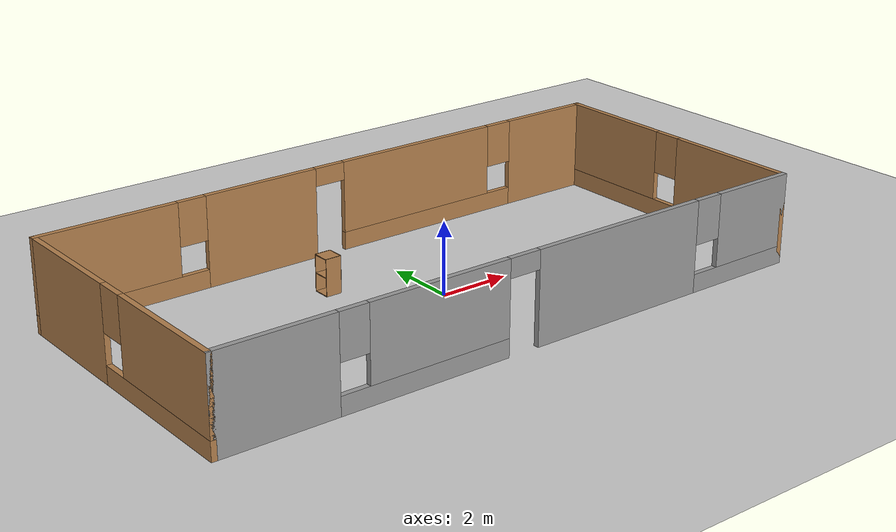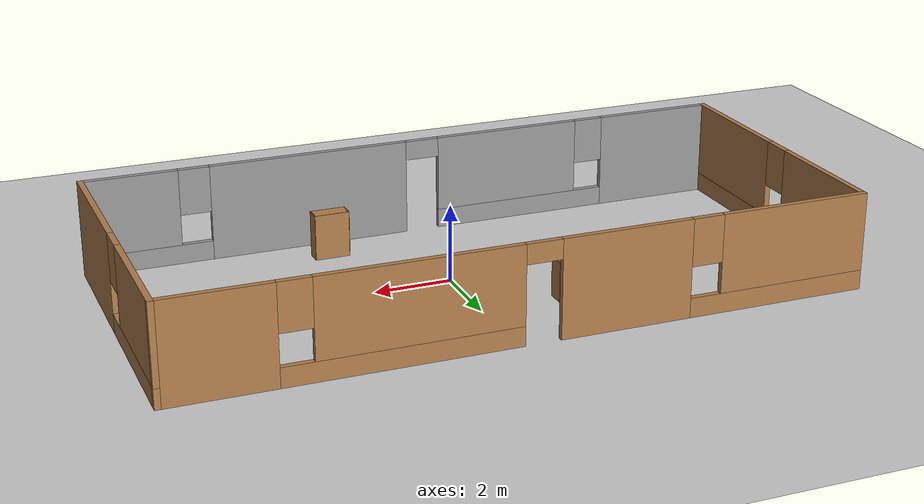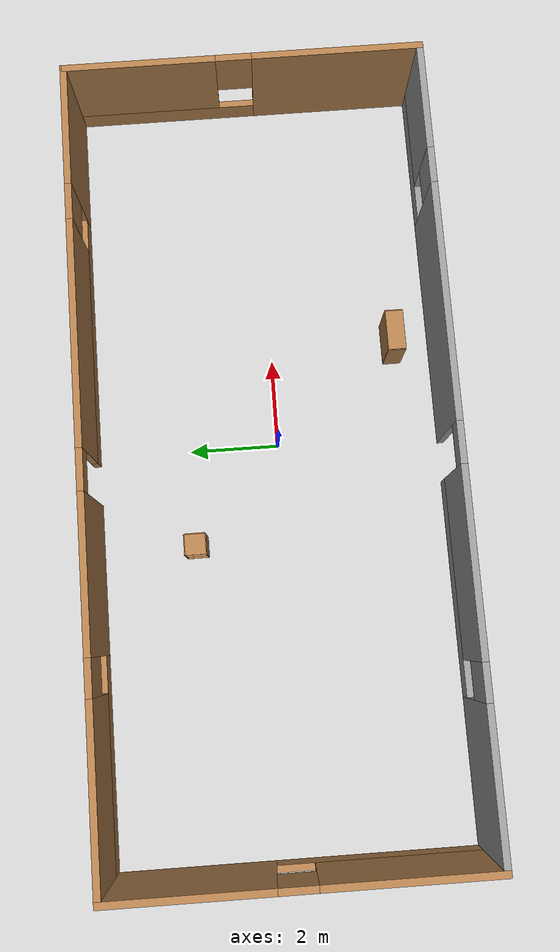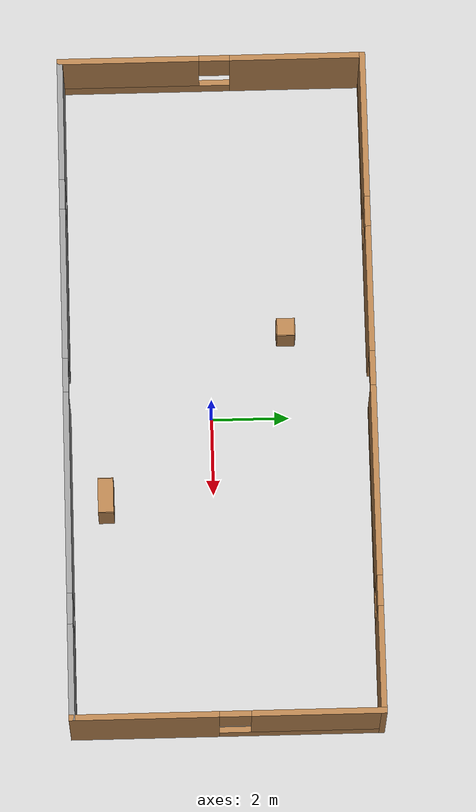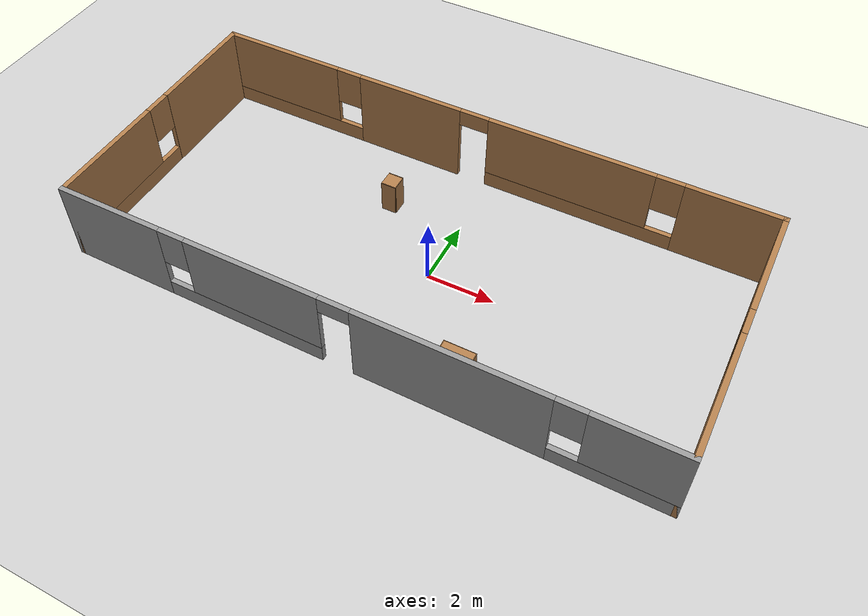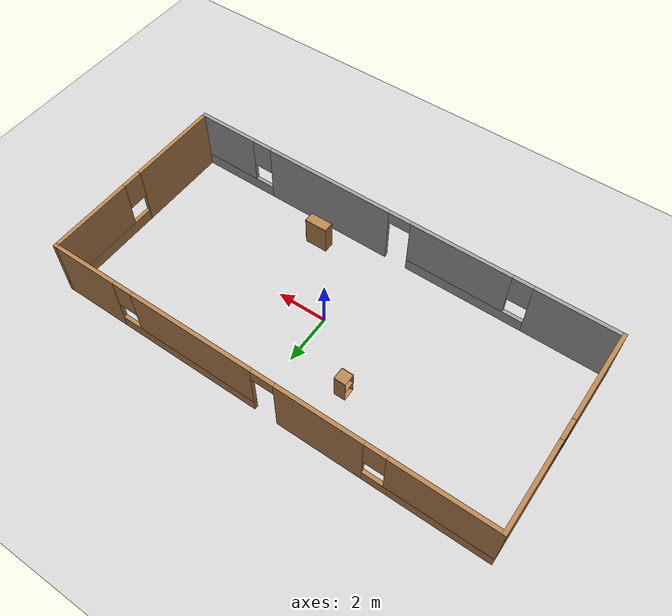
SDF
<sdf version="1.7">
 <world name="default">
  <light name="sun" type="directional">
   <pose>0 0 10 0 -0 0</pose>
   <diffuse>0.8 0.8 0.8 1</diffuse>
   <specular>0.2 0.2 0.2 1</specular>
   <attenuation>
    <range>1000</range>
    <constant>0.9</constant>
    <linear>0.01</linear>
    <quadratic>0.001</quadratic>
   </attenuation>
   <direction>-0.5 0.1 -0.9</direction>
   <spot><inner_angle>0</inner_angle><outer_angle>0</outer_angle><falloff>0</falloff></spot>
  </light>
  <model name="ground_plane">
   <static>1</static>
   <link name="link">
    <collision name="collision">
     <geometry><plane><normal>0 0 1</normal><size>100 100</size></plane></geometry>
     <surface>
      <contact><collide_bitmask>65535</collide_bitmask></contact>
      <friction><ode><mu>100</mu><mu2>50</mu2></ode></friction>
     </surface>
    </collision>
    <visual name="visual">
     <cast_shadows>0</cast_shadows>
     <geometry><plane><normal>0 0 1</normal><size>100 100</size></plane></geometry>
     <material>
      <script><uri>file://media/materials/scripts/gazebo.material</uri><name>Gazebo/Grey</name></script>
     </material>
    </visual>
   </link>
  </model>
  <gravity>0 0 -9.8</gravity>
  <magnetic_field>6e-06 2.3e-05 -4.2e-05</magnetic_field>
  <atmosphere type="adiabatic"/>
  <physics type="ode">
   <max_step_size>0.001</max_step_size>
   <real_time_factor>1</real_time_factor>
   <real_time_update_rate>1000</real_time_update_rate>
  </physics>
  <scene><ambient>0.4 0.4 0.4 1</ambient><background>0.7 0.7 0.7 1</background><shadows>1</shadows></scene>
  <audio><device>default</device></audio>
  <spherical_coordinates>
   <surface_model>EARTH_WGS84</surface_model>
   <latitude_deg>0</latitude_deg>
   <longitude_deg>0</longitude_deg>
   <elevation>0</elevation>
   <heading_deg>0</heading_deg>
  </spherical_coordinates>
  <model name="test_0">
   <pose>-0.38415 0.20926 0 0 -0 0</pose>
   <link name="Wall_0">
    <pose>-8.675 0 0 0 -0 -1.5708</pose>
    <visual name="Wall_0_Visual_0">
     <pose>-2.2421 0 1.25 0 -0 0</pose>
     <geometry><box><size>3.5158 0.15 2.5</size></box></geometry>
     <material>
      <script><uri>file://media/materials/scripts/gazebo.material</uri><name>Gazebo/Wood</name></script>
      <ambient>1 1 1 1</ambient>
     </material>
     <meta><layer>0</layer></meta>
    </visual>
    <collision name="Wall_0_Collision_0">
     <geometry><box><size>3.5158 0.15 2.5</size></box></geometry>
     <pose>-2.2421 0 1.25 0 -0 0</pose>
    </collision>
    <visual name="Wall_0_Visual_1">
     <pose>1.7579 0 0.25 0 -0 0</pose>
     <geometry><box><size>4.4842 0.15 0.5</size></box></geometry>
     <material>
      <script><uri>file://media/materials/scripts/gazebo.material</uri><name>Gazebo/Wood</name></script>
      <ambient>1 1 1 1</ambient>
     </material>
     <meta><layer>0</layer></meta>
    </visual>
    <collision name="Wall_0_Collision_1">
     <geometry><box><size>4.4842 0.15 0.5</size></box></geometry>
     <pose>1.7579 0 0.25 0 -0 0</pose>
    </collision>
    <visual name="Wall_0_Visual_2">
     <pose>2.1579 0 1.5 0 -0 0</pose>
     <geometry><box><size>3.6842 0.15 2</size></box></geometry>
     <material>
      <script><uri>file://media/materials/scripts/gazebo.material</uri><name>Gazebo/Wood</name></script>
      <ambient>1 1 1 1</ambient>
     </material>
     <meta><layer>0</layer></meta>
    </visual>
    <collision name="Wall_0_Collision_2">
     <geometry><box><size>3.6842 0.15 2</size></box></geometry>
     <pose>2.1579 0 1.5 0 -0 0</pose>
    </collision>
    <visual name="Wall_0_Visual_3">
     <pose>-0.084204 0 1.9 0 -0 0</pose>
     <geometry><box><size>0.8 0.15 1.2</size></box></geometry>
     <material>
      <script><uri>file://media/materials/scripts/gazebo.material</uri><name>Gazebo/Wood</name></script>
      <ambient>1 1 1 1</ambient>
     </material>
     <meta><layer>0</layer></meta>
    </visual>
    <collision name="Wall_0_Collision_3">
     <geometry><box><size>0.8 0.15 1.2</size></box></geometry>
     <pose>-0.084204 0 1.9 0 -0 0</pose>
    </collision>
   </link>
   <link name="Wall_1">
    <pose>-0 -3.925 0 0 -0 0</pose>
    <visual name="Wall_1_Visual_0">
     <pose>-7.11658 0 1.25 0 -0 0</pose>
     <geometry><box><size>3.26684 0.15 2.5</size></box></geometry>
     <material>
      <script><uri>file://media/materials/scripts/gazebo.material</uri><name>Gazebo/Grey</name></script>
      <ambient>1 1 1 1</ambient>
     </material>
     <meta><layer>0</layer></meta>
    </visual>
    <collision name="Wall_1_Collision_0">
     <geometry><box><size>3.26684 0.15 2.5</size></box></geometry>
     <pose>-7.11658 0 1.25 0 -0 0</pose>
    </collision>
    <visual name="Wall_1_Visual_1">
     <pose>2.83204 0 1.25 0 -0 0</pose>
     <geometry><box><size>5.25633 0.15 2.5</size></box></geometry>
     <material>
      <script><uri>file://media/materials/scripts/gazebo.material</uri><name>Gazebo/Grey</name></script>
      <ambient>1 1 1 1</ambient>
     </material>
     <meta><layer>0</layer></meta>
    </visual>
    <collision name="Wall_1_Collision_1">
     <geometry><box><size>5.25633 0.15 2.5</size></box></geometry>
     <pose>2.83204 0 1.25 0 -0 0</pose>
    </collision>
    <visual name="Wall_1_Visual_2">
     <pose>-3.08964 0 0.25 0 -0 0</pose>
     <geometry><box><size>4.78703 0.15 0.5</size></box></geometry>
     <material>
      <script><uri>file://media/materials/scripts/gazebo.material</uri><name>Gazebo/Grey</name></script>
      <ambient>1 1 1 1</ambient>
     </material>
     <meta><layer>0</layer></meta>
    </visual>
    <collision name="Wall_1_Collision_2">
     <geometry><box><size>4.78703 0.15 0.5</size></box></geometry>
     <pose>-3.08964 0 0.25 0 -0 0</pose>
    </collision>
    <visual name="Wall_1_Visual_3">
     <pose>7.1051 0 0.25 0 -0 0</pose>
     <geometry><box><size>3.2898 0.15 0.5</size></box></geometry>
     <material>
      <script><uri>file://media/materials/scripts/gazebo.material</uri><name>Gazebo/Grey</name></script>
      <ambient>1 1 1 1</ambient>
     </material>
     <meta><layer>0</layer></meta>
    </visual>
    <collision name="Wall_1_Collision_3">
     <geometry><box><size>3.2898 0.15 0.5</size></box></geometry>
     <pose>7.1051 0 0.25 0 -0 0</pose>
    </collision>
    <visual name="Wall_1_Visual_4">
     <pose>-2.68964 0 1.5 0 -0 0</pose>
     <geometry><box><size>3.98703 0.15 2</size></box></geometry>
     <material>
      <script><uri>file://media/materials/scripts/gazebo.material</uri><name>Gazebo/Grey</name></script>
      <ambient>1 1 1 1</ambient>
     </material>
     <meta><layer>0</layer></meta>
    </visual>
    <collision name="Wall_1_Collision_4">
     <geometry><box><size>3.98703 0.15 2</size></box></geometry>
     <pose>-2.68964 0 1.5 0 -0 0</pose>
    </collision>
    <visual name="Wall_1_Visual_5">
     <pose>-2.68964 0 1.5 0 -0 0</pose>
     <geometry><box><size>3.98703 0.15 2</size></box></geometry>
     <material>
      <script><uri>file://media/materials/scripts/gazebo.material</uri><name>Gazebo/Grey</name></script>
      <ambient>1 1 1 1</ambient>
     </material>
     <meta><layer>0</layer></meta>
    </visual>
    <collision name="Wall_1_Collision_5">
     <geometry><box><size>3.98703 0.15 2</size></box></geometry>
     <pose>-2.68964 0 1.5 0 -0 0</pose>
    </collision>
    <visual name="Wall_1_Visual_6">
     <pose>7.5051 0 1.5 0 -0 0</pose>
     <geometry><box><size>2.4898 0.15 2</size></box></geometry>
     <material>
      <script><uri>file://media/materials/scripts/gazebo.material</uri><name>Gazebo/Grey</name></script>
      <ambient>1 1 1 1</ambient>
     </material>
     <meta><layer>0</layer></meta>
    </visual>
    <collision name="Wall_1_Collision_6">
     <geometry><box><size>2.4898 0.15 2</size></box></geometry>
     <pose>7.5051 0 1.5 0 -0 0</pose>
    </collision>
    <visual name="Wall_1_Visual_7">
     <pose>-5.08316 0 1.9 0 -0 0</pose>
     <geometry><box><size>0.8 0.15 1.2</size></box></geometry>
     <material>
      <script><uri>file://media/materials/scripts/gazebo.material</uri><name>Gazebo/Grey</name></script>
      <ambient>1 1 1 1</ambient>
     </material>
     <meta><layer>0</layer></meta>
    </visual>
    <collision name="Wall_1_Collision_7">
     <geometry><box><size>0.8 0.15 1.2</size></box></geometry>
     <pose>-5.08316 0 1.9 0 -0 0</pose>
    </collision>
    <visual name="Wall_1_Visual_8">
     <pose>5.8602 0 1.9 0 -0 0</pose>
     <geometry><box><size>0.8 0.15 1.2</size></box></geometry>
     <material>
      <script><uri>file://media/materials/scripts/gazebo.material</uri><name>Gazebo/Grey</name></script>
      <ambient>1 1 1 1</ambient>
     </material>
     <meta><layer>0</layer></meta>
    </visual>
    <collision name="Wall_1_Collision_8">
     <geometry><box><size>0.8 0.15 1.2</size></box></geometry>
     <pose>5.8602 0 1.9 0 -0 0</pose>
    </collision>
    <visual name="Wall_1_Visual_9">
     <pose>-0.246125 0 2.25 0 -0 0</pose>
     <geometry><box><size>0.9 0.15 0.5</size></box></geometry>
     <material>
      <script><uri>file://media/materials/scripts/gazebo.material</uri><name>Gazebo/Grey</name></script>
      <ambient>1 1 1 1</ambient>
     </material>
     <meta><layer>0</layer></meta>
    </visual>
    <collision name="Wall_1_Collision_9">
     <geometry><box><size>0.9 0.15 0.5</size></box></geometry>
     <pose>-0.246125 0 2.25 0 -0 0</pose>
    </collision>
    <visual name="Wall_1_Visual_10">
     <pose>-0.246125 0 2.25 0 -0 0</pose>
     <geometry><box><size>0.9 0.15 0.5</size></box></geometry>
     <material>
      <script><uri>file://media/materials/scripts/gazebo.material</uri><name>Gazebo/Grey</name></script>
      <ambient>1 1 1 1</ambient>
     </material>
     <meta><layer>0</layer></meta>
    </visual>
    <collision name="Wall_1_Collision_10">
     <geometry><box><size>0.9 0.15 0.5</size></box></geometry>
     <pose>-0.246125 0 2.25 0 -0 0</pose>
    </collision>
   </link>
   <link name="Wall_2">
    <pose>8.675 0 0 0 -0 1.5708</pose>
    <visual name="Wall_2_Visual_0">
     <pose>-2.10644 0 1.25 0 -0 0</pose>
     <geometry><box><size>3.78712 0.15 2.5</size></box></geometry>
     <material>
      <script><uri>file://media/materials/scripts/gazebo.material</uri><name>Gazebo/Wood</name></script>
      <ambient>1 1 1 1</ambient>
     </material>
     <meta><layer>0</layer></meta>
    </visual>
    <collision name="Wall_2_Collision_0">
     <geometry><box><size>3.78712 0.15 2.5</size></box></geometry>
     <pose>-2.10644 0 1.25 0 -0 0</pose>
    </collision>
    <visual name="Wall_2_Visual_1">
     <pose>1.89356 0 0.25 0 -0 0</pose>
     <geometry><box><size>4.21288 0.15 0.5</size></box></geometry>
     <material>
      <script><uri>file://media/materials/scripts/gazebo.material</uri><name>Gazebo/Wood</name></script>
      <ambient>1 1 1 1</ambient>
     </material>
     <meta><layer>0</layer></meta>
    </visual>
    <collision name="Wall_2_Collision_1">
     <geometry><box><size>4.21288 0.15 0.5</size></box></geometry>
     <pose>1.89356 0 0.25 0 -0 0</pose>
    </collision>
    <visual name="Wall_2_Visual_2">
     <pose>2.29356 0 1.5 0 -0 0</pose>
     <geometry><box><size>3.41288 0.15 2</size></box></geometry>
     <material>
      <script><uri>file://media/materials/scripts/gazebo.material</uri><name>Gazebo/Wood</name></script>
      <ambient>1 1 1 1</ambient>
     </material>
     <meta><layer>0</layer></meta>
    </visual>
    <collision name="Wall_2_Collision_2">
     <geometry><box><size>3.41288 0.15 2</size></box></geometry>
     <pose>2.29356 0 1.5 0 -0 0</pose>
    </collision>
    <visual name="Wall_2_Visual_3">
     <pose>0.18712 0 1.9 0 -0 0</pose>
     <geometry><box><size>0.8 0.15 1.2</size></box></geometry>
     <material>
      <script><uri>file://media/materials/scripts/gazebo.material</uri><name>Gazebo/Wood</name></script>
      <ambient>1 1 1 1</ambient>
     </material>
     <meta><layer>0</layer></meta>
    </visual>
    <collision name="Wall_2_Collision_3">
     <geometry><box><size>0.8 0.15 1.2</size></box></geometry>
     <pose>0.18712 0 1.9 0 -0 0</pose>
    </collision>
   </link>
   <link name="Wall_3">
    <pose>-0 3.925 0 0 -0 3.14159</pose>
    <visual name="Wall_3_Visual_0">
     <pose>-7.36788 0 1.25 0 -0 0</pose>
     <geometry><box><size>2.76424 0.15 2.5</size></box></geometry>
     <material>
      <script><uri>file://media/materials/scripts/gazebo.material</uri><name>Gazebo/Wood</name></script>
      <ambient>1 1 1 1</ambient>
     </material>
     <meta><layer>0</layer></meta>
    </visual>
    <collision name="Wall_3_Collision_0">
     <geometry><box><size>2.76424 0.15 2.5</size></box></geometry>
     <pose>-7.36788 0 1.25 0 -0 0</pose>
    </collision>
    <visual name="Wall_3_Visual_1">
     <pose>2.36374 0 1.25 0 -0 0</pose>
     <geometry><box><size>3.33523 0.15 2.5</size></box></geometry>
     <material>
      <script><uri>file://media/materials/scripts/gazebo.material</uri><name>Gazebo/Wood</name></script>
      <ambient>1 1 1 1</ambient>
     </material>
     <meta><layer>0</layer></meta>
    </visual>
    <collision name="Wall_3_Collision_1">
     <geometry><box><size>3.33523 0.15 2.5</size></box></geometry>
     <pose>2.36374 0 1.25 0 -0 0</pose>
    </collision>
    <visual name="Wall_3_Visual_2">
     <pose>-3.09482 0 0.25 0 -0 0</pose>
     <geometry><box><size>5.78188 0.15 0.5</size></box></geometry>
     <material>
      <script><uri>file://media/materials/scripts/gazebo.material</uri><name>Gazebo/Wood</name></script>
      <ambient>1 1 1 1</ambient>
     </material>
     <meta><layer>0</layer></meta>
    </visual>
    <collision name="Wall_3_Collision_2">
     <geometry><box><size>5.78188 0.15 0.5</size></box></geometry>
     <pose>-3.09482 0 0.25 0 -0 0</pose>
    </collision>
    <visual name="Wall_3_Visual_3">
     <pose>6.39068 0 0.25 0 -0 0</pose>
     <geometry><box><size>4.71864 0.15 0.5</size></box></geometry>
     <material>
      <script><uri>file://media/materials/scripts/gazebo.material</uri><name>Gazebo/Wood</name></script>
      <ambient>1 1 1 1</ambient>
     </material>
     <meta><layer>0</layer></meta>
    </visual>
    <collision name="Wall_3_Collision_3">
     <geometry><box><size>4.71864 0.15 0.5</size></box></geometry>
     <pose>6.39068 0 0.25 0 -0 0</pose>
    </collision>
    <visual name="Wall_3_Visual_4">
     <pose>-2.69482 0 1.5 0 -0 0</pose>
     <geometry><box><size>4.98188 0.15 2</size></box></geometry>
     <material>
      <script><uri>file://media/materials/scripts/gazebo.material</uri><name>Gazebo/Wood</name></script>
      <ambient>1 1 1 1</ambient>
     </material>
     <meta><layer>0</layer></meta>
    </visual>
    <collision name="Wall_3_Collision_4">
     <geometry><box><size>4.98188 0.15 2</size></box></geometry>
     <pose>-2.69482 0 1.5 0 -0 0</pose>
    </collision>
    <visual name="Wall_3_Visual_5">
     <pose>-2.69482 0 1.5 0 -0 0</pose>
     <geometry><box><size>4.98188 0.15 2</size></box></geometry>
     <material>
      <script><uri>file://media/materials/scripts/gazebo.material</uri><name>Gazebo/Wood</name></script>
      <ambient>1 1 1 1</ambient>
     </material>
     <meta><layer>0</layer></meta>
    </visual>
    <collision name="Wall_3_Collision_5">
     <geometry><box><size>4.98188 0.15 2</size></box></geometry>
     <pose>-2.69482 0 1.5 0 -0 0</pose>
    </collision>
    <visual name="Wall_3_Visual_6">
     <pose>6.79068 0 1.5 0 -0 0</pose>
     <geometry><box><size>3.91864 0.15 2</size></box></geometry>
     <material>
      <script><uri>file://media/materials/scripts/gazebo.material</uri><name>Gazebo/Wood</name></script>
      <ambient>1 1 1 1</ambient>
     </material>
     <meta><layer>0</layer></meta>
    </visual>
    <collision name="Wall_3_Collision_6">
     <geometry><box><size>3.91864 0.15 2</size></box></geometry>
     <pose>6.79068 0 1.5 0 -0 0</pose>
    </collision>
    <visual name="Wall_3_Visual_7">
     <pose>-5.58576 0 1.9 0 -0 0</pose>
     <geometry><box><size>0.8 0.15 1.2</size></box></geometry>
     <material>
      <script><uri>file://media/materials/scripts/gazebo.material</uri><name>Gazebo/Wood</name></script>
      <ambient>1 1 1 1</ambient>
     </material>
     <meta><layer>0</layer></meta>
    </visual>
    <collision name="Wall_3_Collision_7">
     <geometry><box><size>0.8 0.15 1.2</size></box></geometry>
     <pose>-5.58576 0 1.9 0 -0 0</pose>
    </collision>
    <visual name="Wall_3_Visual_8">
     <pose>4.43136 0 1.9 0 -0 0</pose>
     <geometry><box><size>0.8 0.15 1.2</size></box></geometry>
     <material>
      <script><uri>file://media/materials/scripts/gazebo.material</uri><name>Gazebo/Wood</name></script>
      <ambient>1 1 1 1</ambient>
     </material>
     <meta><layer>0</layer></meta>
    </visual>
    <collision name="Wall_3_Collision_8">
     <geometry><box><size>0.8 0.15 1.2</size></box></geometry>
     <pose>4.43136 0 1.9 0 -0 0</pose>
    </collision>
    <visual name="Wall_3_Visual_9">
     <pose>0.246125 0 2.25 0 -0 0</pose>
     <geometry><box><size>0.9 0.15 0.5</size></box></geometry>
     <material>
      <script><uri>file://media/materials/scripts/gazebo.material</uri><name>Gazebo/Wood</name></script>
      <ambient>1 1 1 1</ambient>
     </material>
     <meta><layer>0</layer></meta>
    </visual>
    <collision name="Wall_3_Collision_9">
     <geometry><box><size>0.9 0.15 0.5</size></box></geometry>
     <pose>0.246125 0 2.25 0 -0 0</pose>
    </collision>
    <visual name="Wall_3_Visual_10">
     <pose>0.246125 0 2.25 0 -0 0</pose>
     <geometry><box><size>0.9 0.15 0.5</size></box></geometry>
     <material>
      <script><uri>file://media/materials/scripts/gazebo.material</uri><name>Gazebo/Wood</name></script>
      <ambient>1 1 1 1</ambient>
     </material>
     <meta><layer>0</layer></meta>
    </visual>
    <collision name="Wall_3_Collision_10">
     <geometry><box><size>0.9 0.15 0.5</size></box></geometry>
     <pose>0.246125 0 2.25 0 -0 0</pose>
    </collision>
   </link>
   <static>1</static>
  </model>
  <model name="bookshelf">
   <static>1</static>
   <link name="link">
    <inertial><mass>1</mass></inertial>
    <collision name="back">
     <pose>0 0.005 0.6 0 -0 0</pose>
     <geometry><box><size>0.9 0.01 1.2</size></box></geometry>
    </collision>
    <visual name="visual1">
     <pose>0 0.005 0.6 0 -0 0</pose>
     <geometry><box><size>0.9 0.01 1.2</size></box></geometry>
     <material>
      <script><uri>file://media/materials/scripts/gazebo.material</uri><name>Gazebo/Wood</name></script>
     </material>
    </visual>
    <collision name="left_side">
     <pose>0.45 -0.195 0.6 0 -0 0</pose>
     <geometry><box><size>0.02 0.4 1.2</size></box></geometry>
    </collision>
    <visual name="visual2">
     <pose>0.45 -0.195 0.6 0 -0 0</pose>
     <geometry><box><size>0.02 0.4 1.2</size></box></geometry>
     <material>
      <script><uri>file://media/materials/scripts/gazebo.material</uri><name>Gazebo/Wood</name></script>
     </material>
    </visual>
    <collision name="right_side">
     <pose>-0.45 -0.195 0.6 0 -0 0</pose>
     <geometry><box><size>0.02 0.4 1.2</size></box></geometry>
    </collision>
    <visual name="visual3">
     <pose>-0.45 -0.195 0.6 0 -0 0</pose>
     <geometry><box><size>0.02 0.4 1.2</size></box></geometry>
     <material>
      <script><uri>file://media/materials/scripts/gazebo.material</uri><name>Gazebo/Wood</name></script>
     </material>
    </visual>
    <collision name="bottom">
     <pose>0 -0.195 0.03 0 -0 0</pose>
     <geometry><box><size>0.88 0.4 0.06</size></box></geometry>
    </collision>
    <visual name="visual4">
     <pose>0 -0.195 0.03 0 -0 0</pose>
     <geometry><box><size>0.88 0.4 0.06</size></box></geometry>
     <material>
      <script><uri>file://media/materials/scripts/gazebo.material</uri><name>Gazebo/Wood</name></script>
     </material>
    </visual>
    <collision name="top">
     <pose>0 -0.195 1.19 0 -0 0</pose>
     <geometry><box><size>0.88 0.4 0.02</size></box></geometry>
    </collision>
    <visual name="visual5">
     <pose>0 -0.195 1.19 0 -0 0</pose>
     <geometry><box><size>0.88 0.4 0.02</size></box></geometry>
     <material>
      <script><uri>file://media/materials/scripts/gazebo.material</uri><name>Gazebo/Wood</name></script>
     </material>
    </visual>
    <collision name="low_shelf">
     <pose>0 -0.195 0.43 0 -0 0</pose>
     <geometry><box><size>0.88 0.4 0.02</size></box></geometry>
    </collision>
    <visual name="visual6">
     <pose>0 -0.195 0.43 0 -0 0</pose>
     <geometry><box><size>0.88 0.4 0.02</size></box></geometry>
     <material>
      <script><uri>file://media/materials/scripts/gazebo.material</uri><name>Gazebo/Wood</name></script>
     </material>
    </visual>
    <collision name="high_shelf">
     <pose>0 -0.195 0.8 0 -0 0</pose>
     <geometry><box><size>0.88 0.4 0.02</size></box></geometry>
    </collision>
    <visual name="visual7">
     <pose>0 -0.195 0.8 0 -0 0</pose>
     <geometry><box><size>0.88 0.4 0.02</size></box></geometry>
     <material>
      <script><uri>file://media/materials/scripts/gazebo.material</uri><name>Gazebo/Wood</name></script>
     </material>
    </visual>
   </link>
   <pose>2.23185 -2.57703 0 0 -0 0</pose>
  </model>
  <model name="cabinet">
   <static>1</static>
   <link name="cabinet_bottom_plate">
    <inertial>
     <pose>0 0 -1 0 -0 0</pose>
     <inertia><ixx>2.05</ixx><ixy>0</ixy><ixz>0</ixz><iyy>2.05</iyy><iyz>0</iyz><izz>2.05</izz></inertia>
     <mass>25</mass>
    </inertial>
    <collision name="cabinet_bottom_plate_geom">
     <pose>0 0 0.01 0 -0 0</pose>
     <geometry><box><size>0.45 0.45 0.02</size></box></geometry>
    </collision>
    <visual name="cabinet_bottom_plate_geom_visual">
     <pose>0 0 0.01 0 -0 0</pose>
     <geometry><box><size>0.45 0.45 0.02</size></box></geometry>
     <material>
      <script><uri>file://media/materials/scripts/gazebo.material</uri><name>Gazebo/Wood</name></script>
     </material>
    </visual>
    <collision name="cabinet_bottom_plate_geom_cabinet_back_plate">
     <pose>0.235 0 0.51 0 -0 0</pose>
     <geometry><box><size>0.02 0.45 1.02</size></box></geometry>
    </collision>
    <visual name="cabinet_bottom_plate_geom_cabinet_back_plate_visual">
     <pose>0.235 0 0.51 0 -0 0</pose>
     <geometry><box><size>0.02 0.45 1.02</size></box></geometry>
     <material>
      <script><uri>file://media/materials/scripts/gazebo.material</uri><name>Gazebo/Wood</name></script>
     </material>
    </visual>
    <collision name="cabinet_bottom_plate_geom_cabinet_left_plate">
     <pose>0 0.235 0.51 0 -0 0</pose>
     <geometry><box><size>0.45 0.02 1.02</size></box></geometry>
    </collision>
    <visual name="cabinet_bottom_plate_geom_cabinet_left_plate_visual">
     <pose>0 0.235 0.51 0 -0 0</pose>
     <geometry><box><size>0.45 0.02 1.02</size></box></geometry>
     <material>
      <script><uri>file://media/materials/scripts/gazebo.material</uri><name>Gazebo/Wood</name></script>
     </material>
    </visual>
    <collision name="cabinet_bottom_plate_geom_cabinet_middle_plate">
     <pose>0 0 0.51 0 -0 0</pose>
     <geometry><box><size>0.45 0.45 0.02</size></box></geometry>
    </collision>
    <visual name="cabinet_bottom_plate_geom_cabinet_middle_plate_visual">
     <pose>0 0 0.51 0 -0 0</pose>
     <geometry><box><size>0.45 0.45 0.02</size></box></geometry>
     <material>
      <script><uri>file://media/materials/scripts/gazebo.material</uri><name>Gazebo/Wood</name></script>
     </material>
    </visual>
    <collision name="cabinet_bottom_plate_geom_cabinet_right_plate">
     <pose>0 -0.235 0.51 0 -0 0</pose>
     <geometry><box><size>0.45 0.02 1.02</size></box></geometry>
    </collision>
    <visual name="cabinet_bottom_plate_geom_cabinet_right_plate_visual">
     <pose>0 -0.235 0.51 0 -0 0</pose>
     <geometry><box><size>0.45 0.02 1.02</size></box></geometry>
     <material>
      <script><uri>file://media/materials/scripts/gazebo.material</uri><name>Gazebo/Wood</name></script>
     </material>
    </visual>
    <collision name="cabinet_bottom_plate_geom_cabinet_top_plate">
     <pose>0 0 1.01 0 -0 0</pose>
     <geometry><box><size>0.45 0.45 0.02</size></box></geometry>
    </collision>
    <visual name="cabinet_bottom_plate_geom_cabinet_top_plate_visual">
     <pose>0 0 1.01 0 -0 0</pose>
     <geometry><box><size>0.45 0.45 0.02</size></box></geometry>
     <material>
      <script><uri>file://media/materials/scripts/gazebo.material</uri><name>Gazebo/Wood</name></script>
     </material>
    </visual>
   </link>
   <pose>-2.19288 1.96864 0 0 -0 0</pose>
  </model>
 </world>
</sdf>
